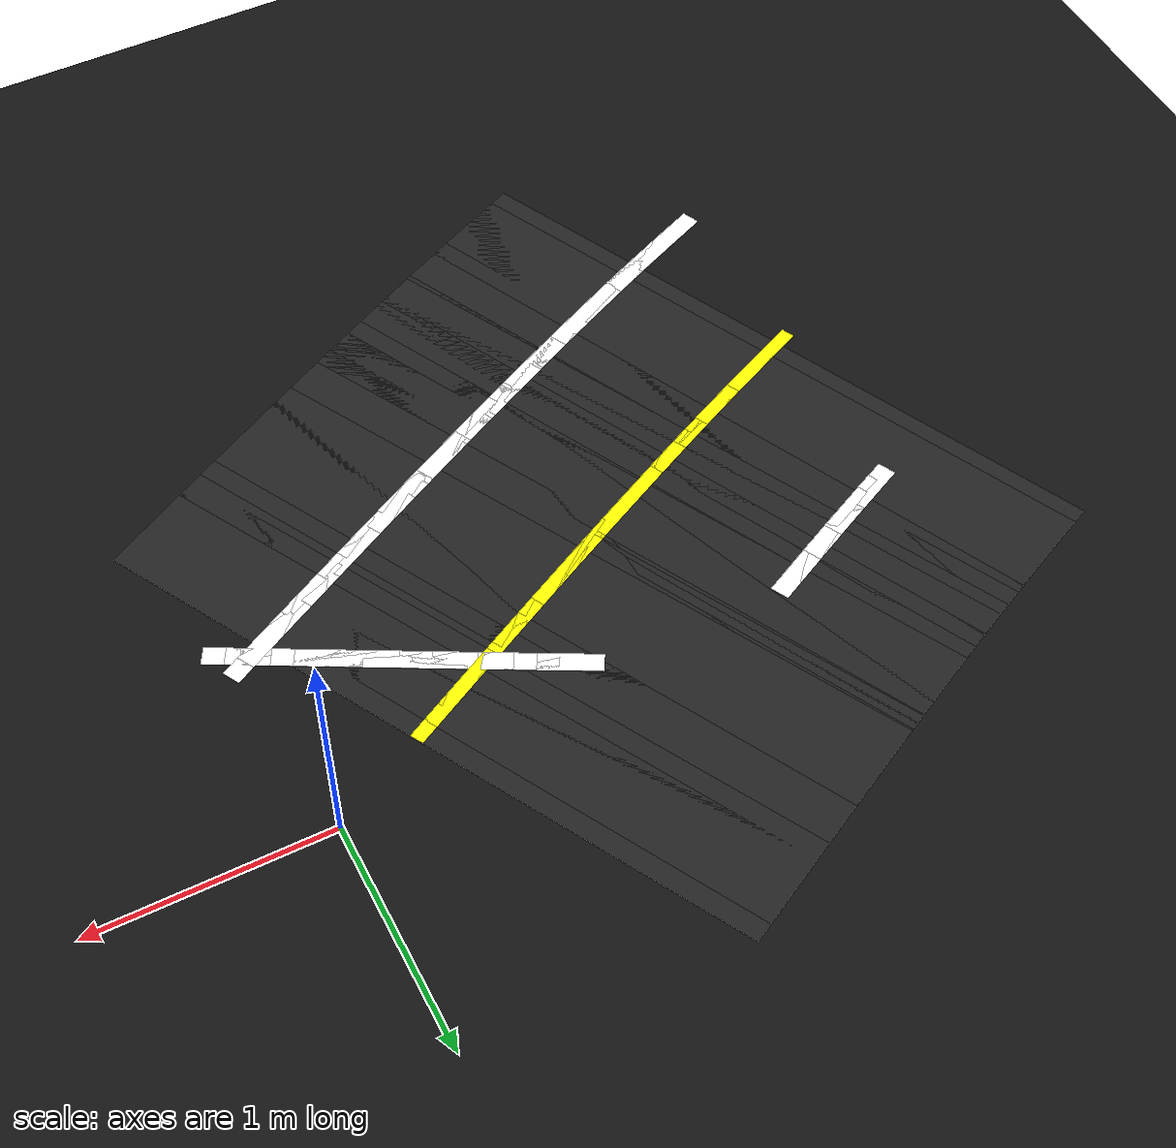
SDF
<sdf version="1.6">
 <world name="figure8_world">
  <model name="ground_plane">
   <static>true</static>
   <link name="link">
    <collision name="collision">
     <geometry><plane><normal>0 0 1</normal><size>120 120</size></plane></geometry>
    </collision>
    <visual name="visual">
     <geometry><plane><normal>0 0 1</normal><size>120 120</size></plane></geometry>
     <material><ambient>0.08 0.08 0.08 1</ambient><diffuse>0.08 0.08 0.08 1</diffuse></material>
    </visual>
   </link>
  </model>
  <model name="seg_01654">
   <static>true</static>
   <pose>-1.0128 -0.3041 0.0030 0 0 -0.4940</pose>
   <link name="link">
    <collision name="collision"><geometry><box><size>0.4000 0.0800 0.002</size></box></geometry></collision>
    <visual name="visual">
     <geometry><box><size>0.4000 0.0800 0.002</size></box></geometry>
     <material><ambient>1 1 1 1</ambient><diffuse>1 1 1 1</diffuse></material>
    </visual>
   </link>
  </model>
  <model name="seg_01658">
   <static>true</static>
   <pose>-0.9364 -0.3454 0.0030 0 0 -0.4948</pose>
   <link name="link">
    <collision name="collision"><geometry><box><size>0.4000 0.0800 0.002</size></box></geometry></collision>
    <visual name="visual">
     <geometry><box><size>0.4000 0.0800 0.002</size></box></geometry>
     <material><ambient>1 1 1 1</ambient><diffuse>1 1 1 1</diffuse></material>
    </visual>
   </link>
  </model>
  <model name="seg_01662">
   <static>true</static>
   <pose>-0.8598 -0.3868 0.0030 0 0 -0.4955</pose>
   <link name="link">
    <collision name="collision"><geometry><box><size>0.4000 0.0800 0.002</size></box></geometry></collision>
    <visual name="visual">
     <geometry><box><size>0.4000 0.0800 0.002</size></box></geometry>
     <material><ambient>1 1 1 1</ambient><diffuse>1 1 1 1</diffuse></material>
    </visual>
   </link>
  </model>
  <model name="seg_01666">
   <static>true</static>
   <pose>-0.7829 -0.4284 0.0030 0 0 -0.4961</pose>
   <link name="link">
    <collision name="collision"><geometry><box><size>0.4000 0.0800 0.002</size></box></geometry></collision>
    <visual name="visual">
     <geometry><box><size>0.4000 0.0800 0.002</size></box></geometry>
     <material><ambient>1 1 1 1</ambient><diffuse>1 1 1 1</diffuse></material>
    </visual>
   </link>
  </model>
  <model name="seg_01670">
   <static>true</static>
   <pose>-0.7060 -0.4701 0.0030 0 0 -0.4966</pose>
   <link name="link">
    <collision name="collision"><geometry><box><size>0.4000 0.0800 0.002</size></box></geometry></collision>
    <visual name="visual">
     <geometry><box><size>0.4000 0.0800 0.002</size></box></geometry>
     <material><ambient>1 1 1 1</ambient><diffuse>1 1 1 1</diffuse></material>
    </visual>
   </link>
  </model>
  <model name="seg_01674">
   <static>true</static>
   <pose>-0.6289 -0.5119 0.0030 0 0 -0.4971</pose>
   <link name="link">
    <collision name="collision"><geometry><box><size>0.4000 0.0800 0.002</size></box></geometry></collision>
    <visual name="visual">
     <geometry><box><size>0.4000 0.0800 0.002</size></box></geometry>
     <material><ambient>1 1 1 1</ambient><diffuse>1 1 1 1</diffuse></material>
    </visual>
   </link>
  </model>
  <model name="seg_01678">
   <static>true</static>
   <pose>-0.5516 -0.5538 0.0030 0 0 -0.4974</pose>
   <link name="link">
    <collision name="collision"><geometry><box><size>0.4000 0.0800 0.002</size></box></geometry></collision>
    <visual name="visual">
     <geometry><box><size>0.4000 0.0800 0.002</size></box></geometry>
     <material><ambient>1 1 1 1</ambient><diffuse>1 1 1 1</diffuse></material>
    </visual>
   </link>
  </model>
  <model name="seg_01682">
   <static>true</static>
   <pose>-0.4743 -0.5958 0.0030 0 0 -0.4976</pose>
   <link name="link">
    <collision name="collision"><geometry><box><size>0.4000 0.0800 0.002</size></box></geometry></collision>
    <visual name="visual">
     <geometry><box><size>0.4000 0.0800 0.002</size></box></geometry>
     <material><ambient>1 1 1 1</ambient><diffuse>1 1 1 1</diffuse></material>
    </visual>
   </link>
  </model>
  <model name="seg_01686">
   <static>true</static>
   <pose>-0.3969 -0.6379 0.0030 0 0 -0.4978</pose>
   <link name="link">
    <collision name="collision"><geometry><box><size>0.4000 0.0800 0.002</size></box></geometry></collision>
    <visual name="visual">
     <geometry><box><size>0.4000 0.0800 0.002</size></box></geometry>
     <material><ambient>1 1 1 1</ambient><diffuse>1 1 1 1</diffuse></material>
    </visual>
   </link>
  </model>
  <model name="seg_01690">
   <static>true</static>
   <pose>-0.3194 -0.6800 0.0030 0 0 -0.4978</pose>
   <link name="link">
    <collision name="collision"><geometry><box><size>0.4000 0.0800 0.002</size></box></geometry></collision>
    <visual name="visual">
     <geometry><box><size>0.4000 0.0800 0.002</size></box></geometry>
     <material><ambient>1 1 1 1</ambient><diffuse>1 1 1 1</diffuse></material>
    </visual>
   </link>
  </model>
  <model name="seg_01694">
   <static>true</static>
   <pose>-0.2418 -0.7222 0.0030 0 0 -0.4978</pose>
   <link name="link">
    <collision name="collision"><geometry><box><size>0.4000 0.0800 0.002</size></box></geometry></collision>
    <visual name="visual">
     <geometry><box><size>0.4000 0.0800 0.002</size></box></geometry>
     <material><ambient>1 1 1 1</ambient><diffuse>1 1 1 1</diffuse></material>
    </visual>
   </link>
  </model>
  <model name="seg_01698">
   <static>true</static>
   <pose>-0.1642 -0.7643 0.0030 0 0 -0.4976</pose>
   <link name="link">
    <collision name="collision"><geometry><box><size>0.4000 0.0800 0.002</size></box></geometry></collision>
    <visual name="visual">
     <geometry><box><size>0.4000 0.0800 0.002</size></box></geometry>
     <material><ambient>1 1 1 1</ambient><diffuse>1 1 1 1</diffuse></material>
    </visual>
   </link>
  </model>
  <model name="seg_01702">
   <static>true</static>
   <pose>-0.0866 -0.8065 0.0030 0 0 -0.4974</pose>
   <link name="link">
    <collision name="collision"><geometry><box><size>0.4000 0.0800 0.002</size></box></geometry></collision>
    <visual name="visual">
     <geometry><box><size>0.4000 0.0800 0.002</size></box></geometry>
     <material><ambient>1 1 1 1</ambient><diffuse>1 1 1 1</diffuse></material>
    </visual>
   </link>
  </model>
  <model name="seg_01706">
   <static>true</static>
   <pose>-0.0090 -0.8486 0.0030 0 0 -0.4971</pose>
   <link name="link">
    <collision name="collision"><geometry><box><size>0.4000 0.0800 0.002</size></box></geometry></collision>
    <visual name="visual">
     <geometry><box><size>0.4000 0.0800 0.002</size></box></geometry>
     <material><ambient>1 1 1 1</ambient><diffuse>1 1 1 1</diffuse></material>
    </visual>
   </link>
  </model>
  <model name="seg_01894">
   <static>true</static>
   <pose>-2.4564 -2.1023 0.0030 0 0 0.4134</pose>
   <link name="link">
    <collision name="collision"><geometry><box><size>0.4000 0.0800 0.002</size></box></geometry></collision>
    <visual name="visual">
     <geometry><box><size>0.4000 0.0800 0.002</size></box></geometry>
     <material><ambient>1 1 1 1</ambient><diffuse>1 1 1 1</diffuse></material>
    </visual>
   </link>
  </model>
  <model name="seg_01898">
   <static>true</static>
   <pose>-2.3869 -2.0714 0.0030 0 0 0.4187</pose>
   <link name="link">
    <collision name="collision"><geometry><box><size>0.4000 0.0800 0.002</size></box></geometry></collision>
    <visual name="visual">
     <geometry><box><size>0.4000 0.0800 0.002</size></box></geometry>
     <material><ambient>1 1 1 1</ambient><diffuse>1 1 1 1</diffuse></material>
    </visual>
   </link>
  </model>
  <model name="seg_01902">
   <static>true</static>
   <pose>-2.3169 -2.0398 0.0030 0 0 0.4238</pose>
   <link name="link">
    <collision name="collision"><geometry><box><size>0.4000 0.0800 0.002</size></box></geometry></collision>
    <visual name="visual">
     <geometry><box><size>0.4000 0.0800 0.002</size></box></geometry>
     <material><ambient>1 1 1 1</ambient><diffuse>1 1 1 1</diffuse></material>
    </visual>
   </link>
  </model>
  <model name="seg_01906">
   <static>true</static>
   <pose>-2.2465 -2.0076 0.0030 0 0 0.4287</pose>
   <link name="link">
    <collision name="collision"><geometry><box><size>0.4000 0.0800 0.002</size></box></geometry></collision>
    <visual name="visual">
     <geometry><box><size>0.4000 0.0800 0.002</size></box></geometry>
     <material><ambient>1 1 1 1</ambient><diffuse>1 1 1 1</diffuse></material>
    </visual>
   </link>
  </model>
  <model name="seg_01910">
   <static>true</static>
   <pose>-2.1757 -1.9749 0.0030 0 0 0.4333</pose>
   <link name="link">
    <collision name="collision"><geometry><box><size>0.4000 0.0800 0.002</size></box></geometry></collision>
    <visual name="visual">
     <geometry><box><size>0.4000 0.0800 0.002</size></box></geometry>
     <material><ambient>1 1 1 1</ambient><diffuse>1 1 1 1</diffuse></material>
    </visual>
   </link>
  </model>
  <model name="seg_01911">
   <static>true</static>
   <pose>-2.4905 -1.2942 0.0030 0 0 0.4333</pose>
   <link name="link">
    <collision name="collision"><geometry><box><size>0.4000 0.0600 0.002</size></box></geometry></collision>
    <visual name="visual">
     <geometry><box><size>0.4000 0.0600 0.002</size></box></geometry>
     <material><ambient>1 1 0 1</ambient><diffuse>1 1 0 1</diffuse></material>
    </visual>
   </link>
  </model>
  <model name="seg_01912">
   <static>true</static>
   <pose>-2.4223 -1.2623 0.0010 0 0 0.4376</pose>
   <link name="link">
    <collision name="collision"><geometry><box><size>0.4000 3.0000 0.002</size></box></geometry></collision>
    <visual name="visual">
     <geometry><box><size>0.4000 3.0000 0.002</size></box></geometry>
     <material><ambient>0.14 0.14 0.14 1</ambient><diffuse>0.14 0.14 0.14 1</diffuse></material>
    </visual>
   </link>
  </model>
  <model name="seg_01914">
   <static>true</static>
   <pose>-2.1044 -1.9416 0.0030 0 0 0.4376</pose>
   <link name="link">
    <collision name="collision"><geometry><box><size>0.4000 0.0800 0.002</size></box></geometry></collision>
    <visual name="visual">
     <geometry><box><size>0.4000 0.0800 0.002</size></box></geometry>
     <material><ambient>1 1 1 1</ambient><diffuse>1 1 1 1</diffuse></material>
    </visual>
   </link>
  </model>
  <model name="seg_01915">
   <static>true</static>
   <pose>-2.4223 -1.2623 0.0030 0 0 0.4376</pose>
   <link name="link">
    <collision name="collision"><geometry><box><size>0.4000 0.0600 0.002</size></box></geometry></collision>
    <visual name="visual">
     <geometry><box><size>0.4000 0.0600 0.002</size></box></geometry>
     <material><ambient>1 1 0 1</ambient><diffuse>1 1 0 1</diffuse></material>
    </visual>
   </link>
  </model>
  <model name="seg_01916">
   <static>true</static>
   <pose>-2.3535 -1.2297 0.0010 0 0 0.4418</pose>
   <link name="link">
    <collision name="collision"><geometry><box><size>0.4000 3.0000 0.002</size></box></geometry></collision>
    <visual name="visual">
     <geometry><box><size>0.4000 3.0000 0.002</size></box></geometry>
     <material><ambient>0.14 0.14 0.14 1</ambient><diffuse>0.14 0.14 0.14 1</diffuse></material>
    </visual>
   </link>
  </model>
  <model name="seg_01918">
   <static>true</static>
   <pose>-2.0328 -1.9077 0.0030 0 0 0.4418</pose>
   <link name="link">
    <collision name="collision"><geometry><box><size>0.4000 0.0800 0.002</size></box></geometry></collision>
    <visual name="visual">
     <geometry><box><size>0.4000 0.0800 0.002</size></box></geometry>
     <material><ambient>1 1 1 1</ambient><diffuse>1 1 1 1</diffuse></material>
    </visual>
   </link>
  </model>
  <model name="seg_01919">
   <static>true</static>
   <pose>-2.3535 -1.2297 0.0030 0 0 0.4418</pose>
   <link name="link">
    <collision name="collision"><geometry><box><size>0.4000 0.0600 0.002</size></box></geometry></collision>
    <visual name="visual">
     <geometry><box><size>0.4000 0.0600 0.002</size></box></geometry>
     <material><ambient>1 1 0 1</ambient><diffuse>1 1 0 1</diffuse></material>
    </visual>
   </link>
  </model>
  <model name="seg_01920">
   <static>true</static>
   <pose>-2.2841 -1.1966 0.0010 0 0 0.4458</pose>
   <link name="link">
    <collision name="collision"><geometry><box><size>0.4000 3.0000 0.002</size></box></geometry></collision>
    <visual name="visual">
     <geometry><box><size>0.4000 3.0000 0.002</size></box></geometry>
     <material><ambient>0.14 0.14 0.14 1</ambient><diffuse>0.14 0.14 0.14 1</diffuse></material>
    </visual>
   </link>
  </model>
  <model name="seg_01922">
   <static>true</static>
   <pose>-1.9608 -1.8733 0.0030 0 0 0.4458</pose>
   <link name="link">
    <collision name="collision"><geometry><box><size>0.4000 0.0800 0.002</size></box></geometry></collision>
    <visual name="visual">
     <geometry><box><size>0.4000 0.0800 0.002</size></box></geometry>
     <material><ambient>1 1 1 1</ambient><diffuse>1 1 1 1</diffuse></material>
    </visual>
   </link>
  </model>
  <model name="seg_01923">
   <static>true</static>
   <pose>-2.2841 -1.1966 0.0030 0 0 0.4458</pose>
   <link name="link">
    <collision name="collision"><geometry><box><size>0.4000 0.0600 0.002</size></box></geometry></collision>
    <visual name="visual">
     <geometry><box><size>0.4000 0.0600 0.002</size></box></geometry>
     <material><ambient>1 1 0 1</ambient><diffuse>1 1 0 1</diffuse></material>
    </visual>
   </link>
  </model>
  <model name="seg_01924">
   <static>true</static>
   <pose>-2.2142 -1.1629 0.0010 0 0 0.4495</pose>
   <link name="link">
    <collision name="collision"><geometry><box><size>0.4000 3.0000 0.002</size></box></geometry></collision>
    <visual name="visual">
     <geometry><box><size>0.4000 3.0000 0.002</size></box></geometry>
     <material><ambient>0.14 0.14 0.14 1</ambient><diffuse>0.14 0.14 0.14 1</diffuse></material>
    </visual>
   </link>
  </model>
  <model name="seg_01926">
   <static>true</static>
   <pose>-1.8883 -1.8384 0.0030 0 0 0.4495</pose>
   <link name="link">
    <collision name="collision"><geometry><box><size>0.4000 0.0800 0.002</size></box></geometry></collision>
    <visual name="visual">
     <geometry><box><size>0.4000 0.0800 0.002</size></box></geometry>
     <material><ambient>1 1 1 1</ambient><diffuse>1 1 1 1</diffuse></material>
    </visual>
   </link>
  </model>
  <model name="seg_01927">
   <static>true</static>
   <pose>-2.2142 -1.1629 0.0030 0 0 0.4495</pose>
   <link name="link">
    <collision name="collision"><geometry><box><size>0.4000 0.0600 0.002</size></box></geometry></collision>
    <visual name="visual">
     <geometry><box><size>0.4000 0.0600 0.002</size></box></geometry>
     <material><ambient>1 1 0 1</ambient><diffuse>1 1 0 1</diffuse></material>
    </visual>
   </link>
  </model>
  <model name="seg_01928">
   <static>true</static>
   <pose>-2.1439 -1.1286 0.0010 0 0 0.4531</pose>
   <link name="link">
    <collision name="collision"><geometry><box><size>0.4000 3.0000 0.002</size></box></geometry></collision>
    <visual name="visual">
     <geometry><box><size>0.4000 3.0000 0.002</size></box></geometry>
     <material><ambient>0.14 0.14 0.14 1</ambient><diffuse>0.14 0.14 0.14 1</diffuse></material>
    </visual>
   </link>
  </model>
  <model name="seg_01929">
   <static>true</static>
   <pose>-2.4722 -0.4543 0.0030 0 0 0.4531</pose>
   <link name="link">
    <collision name="collision"><geometry><box><size>0.4000 0.0800 0.002</size></box></geometry></collision>
    <visual name="visual">
     <geometry><box><size>0.4000 0.0800 0.002</size></box></geometry>
     <material><ambient>1 1 1 1</ambient><diffuse>1 1 1 1</diffuse></material>
    </visual>
   </link>
  </model>
  <model name="seg_01930">
   <static>true</static>
   <pose>-1.8156 -1.8029 0.0030 0 0 0.4531</pose>
   <link name="link">
    <collision name="collision"><geometry><box><size>0.4000 0.0800 0.002</size></box></geometry></collision>
    <visual name="visual">
     <geometry><box><size>0.4000 0.0800 0.002</size></box></geometry>
     <material><ambient>1 1 1 1</ambient><diffuse>1 1 1 1</diffuse></material>
    </visual>
   </link>
  </model>
  <model name="seg_01931">
   <static>true</static>
   <pose>-2.1439 -1.1286 0.0030 0 0 0.4531</pose>
   <link name="link">
    <collision name="collision"><geometry><box><size>0.4000 0.0600 0.002</size></box></geometry></collision>
    <visual name="visual">
     <geometry><box><size>0.4000 0.0600 0.002</size></box></geometry>
     <material><ambient>1 1 0 1</ambient><diffuse>1 1 0 1</diffuse></material>
    </visual>
   </link>
  </model>
  <model name="seg_01932">
   <static>true</static>
   <pose>-2.0730 -1.0938 0.0010 0 0 0.4565</pose>
   <link name="link">
    <collision name="collision"><geometry><box><size>0.4000 3.0000 0.002</size></box></geometry></collision>
    <visual name="visual">
     <geometry><box><size>0.4000 3.0000 0.002</size></box></geometry>
     <material><ambient>0.14 0.14 0.14 1</ambient><diffuse>0.14 0.14 0.14 1</diffuse></material>
    </visual>
   </link>
  </model>
  <model name="seg_01933">
   <static>true</static>
   <pose>-2.4036 -0.4206 0.0030 0 0 0.4565</pose>
   <link name="link">
    <collision name="collision"><geometry><box><size>0.4000 0.0800 0.002</size></box></geometry></collision>
    <visual name="visual">
     <geometry><box><size>0.4000 0.0800 0.002</size></box></geometry>
     <material><ambient>1 1 1 1</ambient><diffuse>1 1 1 1</diffuse></material>
    </visual>
   </link>
  </model>
  <model name="seg_01934">
   <static>true</static>
   <pose>-1.7424 -1.7670 0.0030 0 0 0.4565</pose>
   <link name="link">
    <collision name="collision"><geometry><box><size>0.4000 0.0800 0.002</size></box></geometry></collision>
    <visual name="visual">
     <geometry><box><size>0.4000 0.0800 0.002</size></box></geometry>
     <material><ambient>1 1 1 1</ambient><diffuse>1 1 1 1</diffuse></material>
    </visual>
   </link>
  </model>
  <model name="seg_01935">
   <static>true</static>
   <pose>-2.0730 -1.0938 0.0030 0 0 0.4565</pose>
   <link name="link">
    <collision name="collision"><geometry><box><size>0.4000 0.0600 0.002</size></box></geometry></collision>
    <visual name="visual">
     <geometry><box><size>0.4000 0.0600 0.002</size></box></geometry>
     <material><ambient>1 1 0 1</ambient><diffuse>1 1 0 1</diffuse></material>
    </visual>
   </link>
  </model>
  <model name="seg_01936">
   <static>true</static>
   <pose>-2.0017 -1.0585 0.0010 0 0 0.4597</pose>
   <link name="link">
    <collision name="collision"><geometry><box><size>0.4000 3.0000 0.002</size></box></geometry></collision>
    <visual name="visual">
     <geometry><box><size>0.4000 3.0000 0.002</size></box></geometry>
     <material><ambient>0.14 0.14 0.14 1</ambient><diffuse>0.14 0.14 0.14 1</diffuse></material>
    </visual>
   </link>
  </model>
  <model name="seg_01937">
   <static>true</static>
   <pose>-2.3344 -0.3864 0.0030 0 0 0.4597</pose>
   <link name="link">
    <collision name="collision"><geometry><box><size>0.4000 0.0800 0.002</size></box></geometry></collision>
    <visual name="visual">
     <geometry><box><size>0.4000 0.0800 0.002</size></box></geometry>
     <material><ambient>1 1 1 1</ambient><diffuse>1 1 1 1</diffuse></material>
    </visual>
   </link>
  </model>
  <model name="seg_01938">
   <static>true</static>
   <pose>-1.6689 -1.7306 0.0030 0 0 0.4597</pose>
   <link name="link">
    <collision name="collision"><geometry><box><size>0.4000 0.0800 0.002</size></box></geometry></collision>
    <visual name="visual">
     <geometry><box><size>0.4000 0.0800 0.002</size></box></geometry>
     <material><ambient>1 1 1 1</ambient><diffuse>1 1 1 1</diffuse></material>
    </visual>
   </link>
  </model>
  <model name="seg_01939">
   <static>true</static>
   <pose>-2.0017 -1.0585 0.0030 0 0 0.4597</pose>
   <link name="link">
    <collision name="collision"><geometry><box><size>0.4000 0.0600 0.002</size></box></geometry></collision>
    <visual name="visual">
     <geometry><box><size>0.4000 0.0600 0.002</size></box></geometry>
     <material><ambient>1 1 0 1</ambient><diffuse>1 1 0 1</diffuse></material>
    </visual>
   </link>
  </model>
  <model name="seg_01940">
   <static>true</static>
   <pose>-1.9299 -1.0227 0.0010 0 0 0.4627</pose>
   <link name="link">
    <collision name="collision"><geometry><box><size>0.4000 3.0000 0.002</size></box></geometry></collision>
    <visual name="visual">
     <geometry><box><size>0.4000 3.0000 0.002</size></box></geometry>
     <material><ambient>0.14 0.14 0.14 1</ambient><diffuse>0.14 0.14 0.14 1</diffuse></material>
    </visual>
   </link>
  </model>
  <model name="seg_01941">
   <static>true</static>
   <pose>-2.2647 -0.3516 0.0030 0 0 0.4627</pose>
   <link name="link">
    <collision name="collision"><geometry><box><size>0.4000 0.0800 0.002</size></box></geometry></collision>
    <visual name="visual">
     <geometry><box><size>0.4000 0.0800 0.002</size></box></geometry>
     <material><ambient>1 1 1 1</ambient><diffuse>1 1 1 1</diffuse></material>
    </visual>
   </link>
  </model>
  <model name="seg_01942">
   <static>true</static>
   <pose>-1.5951 -1.6938 0.0030 0 0 0.4627</pose>
   <link name="link">
    <collision name="collision"><geometry><box><size>0.4000 0.0800 0.002</size></box></geometry></collision>
    <visual name="visual">
     <geometry><box><size>0.4000 0.0800 0.002</size></box></geometry>
     <material><ambient>1 1 1 1</ambient><diffuse>1 1 1 1</diffuse></material>
    </visual>
   </link>
  </model>
  <model name="seg_01943">
   <static>true</static>
   <pose>-1.9299 -1.0227 0.0030 0 0 0.4627</pose>
   <link name="link">
    <collision name="collision"><geometry><box><size>0.4000 0.0600 0.002</size></box></geometry></collision>
    <visual name="visual">
     <geometry><box><size>0.4000 0.0600 0.002</size></box></geometry>
     <material><ambient>1 1 0 1</ambient><diffuse>1 1 0 1</diffuse></material>
    </visual>
   </link>
  </model>
  <model name="seg_01944">
   <static>true</static>
   <pose>-1.8577 -0.9864 0.0010 0 0 0.4656</pose>
   <link name="link">
    <collision name="collision"><geometry><box><size>0.4000 3.0000 0.002</size></box></geometry></collision>
    <visual name="visual">
     <geometry><box><size>0.4000 3.0000 0.002</size></box></geometry>
     <material><ambient>0.14 0.14 0.14 1</ambient><diffuse>0.14 0.14 0.14 1</diffuse></material>
    </visual>
   </link>
  </model>
  <model name="seg_01945">
   <static>true</static>
   <pose>-2.1945 -0.3163 0.0030 0 0 0.4656</pose>
   <link name="link">
    <collision name="collision"><geometry><box><size>0.4000 0.0800 0.002</size></box></geometry></collision>
    <visual name="visual">
     <geometry><box><size>0.4000 0.0800 0.002</size></box></geometry>
     <material><ambient>1 1 1 1</ambient><diffuse>1 1 1 1</diffuse></material>
    </visual>
   </link>
  </model>
  <model name="seg_01946">
   <static>true</static>
   <pose>-1.5210 -1.6566 0.0030 0 0 0.4656</pose>
   <link name="link">
    <collision name="collision"><geometry><box><size>0.4000 0.0800 0.002</size></box></geometry></collision>
    <visual name="visual">
     <geometry><box><size>0.4000 0.0800 0.002</size></box></geometry>
     <material><ambient>1 1 1 1</ambient><diffuse>1 1 1 1</diffuse></material>
    </visual>
   </link>
  </model>
  <model name="seg_01947">
   <static>true</static>
   <pose>-1.8577 -0.9864 0.0030 0 0 0.4656</pose>
   <link name="link">
    <collision name="collision"><geometry><box><size>0.4000 0.0600 0.002</size></box></geometry></collision>
    <visual name="visual">
     <geometry><box><size>0.4000 0.0600 0.002</size></box></geometry>
     <material><ambient>1 1 0 1</ambient><diffuse>1 1 0 1</diffuse></material>
    </visual>
   </link>
  </model>
  <model name="seg_01948">
   <static>true</static>
   <pose>-1.7851 -0.9497 0.0010 0 0 0.4684</pose>
   <link name="link">
    <collision name="collision"><geometry><box><size>0.4000 3.0000 0.002</size></box></geometry></collision>
    <visual name="visual">
     <geometry><box><size>0.4000 3.0000 0.002</size></box></geometry>
     <material><ambient>0.14 0.14 0.14 1</ambient><diffuse>0.14 0.14 0.14 1</diffuse></material>
    </visual>
   </link>
  </model>
  <model name="seg_01949">
   <static>true</static>
   <pose>-2.1237 -0.2804 0.0030 0 0 0.4684</pose>
   <link name="link">
    <collision name="collision"><geometry><box><size>0.4000 0.0800 0.002</size></box></geometry></collision>
    <visual name="visual">
     <geometry><box><size>0.4000 0.0800 0.002</size></box></geometry>
     <material><ambient>1 1 1 1</ambient><diffuse>1 1 1 1</diffuse></material>
    </visual>
   </link>
  </model>
  <model name="seg_01950">
   <static>true</static>
   <pose>-1.4465 -1.6189 0.0030 0 0 0.4684</pose>
   <link name="link">
    <collision name="collision"><geometry><box><size>0.4000 0.0800 0.002</size></box></geometry></collision>
    <visual name="visual">
     <geometry><box><size>0.4000 0.0800 0.002</size></box></geometry>
     <material><ambient>1 1 1 1</ambient><diffuse>1 1 1 1</diffuse></material>
    </visual>
   </link>
  </model>
  <model name="seg_01951">
   <static>true</static>
   <pose>-1.7851 -0.9497 0.0030 0 0 0.4684</pose>
   <link name="link">
    <collision name="collision"><geometry><box><size>0.4000 0.0600 0.002</size></box></geometry></collision>
    <visual name="visual">
     <geometry><box><size>0.4000 0.0600 0.002</size></box></geometry>
     <material><ambient>1 1 0 1</ambient><diffuse>1 1 0 1</diffuse></material>
    </visual>
   </link>
  </model>
  <model name="seg_01952">
   <static>true</static>
   <pose>-1.7121 -0.9125 0.0010 0 0 0.4709</pose>
   <link name="link">
    <collision name="collision"><geometry><box><size>0.4000 3.0000 0.002</size></box></geometry></collision>
    <visual name="visual">
     <geometry><box><size>0.4000 3.0000 0.002</size></box></geometry>
     <material><ambient>0.14 0.14 0.14 1</ambient><diffuse>0.14 0.14 0.14 1</diffuse></material>
    </visual>
   </link>
  </model>
  <model name="seg_01954">
   <static>true</static>
   <pose>-1.3718 -1.5808 0.0030 0 0 0.4709</pose>
   <link name="link">
    <collision name="collision"><geometry><box><size>0.4000 0.0800 0.002</size></box></geometry></collision>
    <visual name="visual">
     <geometry><box><size>0.4000 0.0800 0.002</size></box></geometry>
     <material><ambient>1 1 1 1</ambient><diffuse>1 1 1 1</diffuse></material>
    </visual>
   </link>
  </model>
  <model name="seg_01955">
   <static>true</static>
   <pose>-1.7121 -0.9125 0.0030 0 0 0.4709</pose>
   <link name="link">
    <collision name="collision"><geometry><box><size>0.4000 0.0600 0.002</size></box></geometry></collision>
    <visual name="visual">
     <geometry><box><size>0.4000 0.0600 0.002</size></box></geometry>
     <material><ambient>1 1 0 1</ambient><diffuse>1 1 0 1</diffuse></material>
    </visual>
   </link>
  </model>
  <model name="seg_01956">
   <static>true</static>
   <pose>-1.6387 -0.8749 0.0010 0 0 0.4734</pose>
   <link name="link">
    <collision name="collision"><geometry><box><size>0.4000 3.0000 0.002</size></box></geometry></collision>
    <visual name="visual">
     <geometry><box><size>0.4000 3.0000 0.002</size></box></geometry>
     <material><ambient>0.14 0.14 0.14 1</ambient><diffuse>0.14 0.14 0.14 1</diffuse></material>
    </visual>
   </link>
  </model>
  <model name="seg_01958">
   <static>true</static>
   <pose>-1.2967 -1.5424 0.0030 0 0 0.4734</pose>
   <link name="link">
    <collision name="collision"><geometry><box><size>0.4000 0.0800 0.002</size></box></geometry></collision>
    <visual name="visual">
     <geometry><box><size>0.4000 0.0800 0.002</size></box></geometry>
     <material><ambient>1 1 1 1</ambient><diffuse>1 1 1 1</diffuse></material>
    </visual>
   </link>
  </model>
  <model name="seg_01959">
   <static>true</static>
   <pose>-1.6387 -0.8749 0.0030 0 0 0.4734</pose>
   <link name="link">
    <collision name="collision"><geometry><box><size>0.4000 0.0600 0.002</size></box></geometry></collision>
    <visual name="visual">
     <geometry><box><size>0.4000 0.0600 0.002</size></box></geometry>
     <material><ambient>1 1 0 1</ambient><diffuse>1 1 0 1</diffuse></material>
    </visual>
   </link>
  </model>
  <model name="seg_01960">
   <static>true</static>
   <pose>-1.5649 -0.8369 0.0010 0 0 0.4757</pose>
   <link name="link">
    <collision name="collision"><geometry><box><size>0.4000 3.0000 0.002</size></box></geometry></collision>
    <visual name="visual">
     <geometry><box><size>0.4000 3.0000 0.002</size></box></geometry>
     <material><ambient>0.14 0.14 0.14 1</ambient><diffuse>0.14 0.14 0.14 1</diffuse></material>
    </visual>
   </link>
  </model>
  <model name="seg_01962">
   <static>true</static>
   <pose>-1.2214 -1.5036 0.0030 0 0 0.4757</pose>
   <link name="link">
    <collision name="collision"><geometry><box><size>0.4000 0.0800 0.002</size></box></geometry></collision>
    <visual name="visual">
     <geometry><box><size>0.4000 0.0800 0.002</size></box></geometry>
     <material><ambient>1 1 1 1</ambient><diffuse>1 1 1 1</diffuse></material>
    </visual>
   </link>
  </model>
  <model name="seg_01963">
   <static>true</static>
   <pose>-1.5649 -0.8369 0.0030 0 0 0.4757</pose>
   <link name="link">
    <collision name="collision"><geometry><box><size>0.4000 0.0600 0.002</size></box></geometry></collision>
    <visual name="visual">
     <geometry><box><size>0.4000 0.0600 0.002</size></box></geometry>
     <material><ambient>1 1 0 1</ambient><diffuse>1 1 0 1</diffuse></material>
    </visual>
   </link>
  </model>
  <model name="seg_01964">
   <static>true</static>
   <pose>-1.4908 -0.7985 0.0010 0 0 0.4779</pose>
   <link name="link">
    <collision name="collision"><geometry><box><size>0.4000 3.0000 0.002</size></box></geometry></collision>
    <visual name="visual">
     <geometry><box><size>0.4000 3.0000 0.002</size></box></geometry>
     <material><ambient>0.14 0.14 0.14 1</ambient><diffuse>0.14 0.14 0.14 1</diffuse></material>
    </visual>
   </link>
  </model>
  <model name="seg_01966">
   <static>true</static>
   <pose>-1.1458 -1.4645 0.0030 0 0 0.4779</pose>
   <link name="link">
    <collision name="collision"><geometry><box><size>0.4000 0.0800 0.002</size></box></geometry></collision>
    <visual name="visual">
     <geometry><box><size>0.4000 0.0800 0.002</size></box></geometry>
     <material><ambient>1 1 1 1</ambient><diffuse>1 1 1 1</diffuse></material>
    </visual>
   </link>
  </model>
  <model name="seg_01967">
   <static>true</static>
   <pose>-1.4908 -0.7985 0.0030 0 0 0.4779</pose>
   <link name="link">
    <collision name="collision"><geometry><box><size>0.4000 0.0600 0.002</size></box></geometry></collision>
    <visual name="visual">
     <geometry><box><size>0.4000 0.0600 0.002</size></box></geometry>
     <material><ambient>1 1 0 1</ambient><diffuse>1 1 0 1</diffuse></material>
    </visual>
   </link>
  </model>
  <model name="seg_01968">
   <static>true</static>
   <pose>-1.4163 -0.7597 0.0010 0 0 0.4799</pose>
   <link name="link">
    <collision name="collision"><geometry><box><size>0.4000 3.0000 0.002</size></box></geometry></collision>
    <visual name="visual">
     <geometry><box><size>0.4000 3.0000 0.002</size></box></geometry>
     <material><ambient>0.14 0.14 0.14 1</ambient><diffuse>0.14 0.14 0.14 1</diffuse></material>
    </visual>
   </link>
  </model>
  <model name="seg_01970">
   <static>true</static>
   <pose>-1.0700 -1.4250 0.0030 0 0 0.4799</pose>
   <link name="link">
    <collision name="collision"><geometry><box><size>0.4000 0.0800 0.002</size></box></geometry></collision>
    <visual name="visual">
     <geometry><box><size>0.4000 0.0800 0.002</size></box></geometry>
     <material><ambient>1 1 1 1</ambient><diffuse>1 1 1 1</diffuse></material>
    </visual>
   </link>
  </model>
  <model name="seg_01971">
   <static>true</static>
   <pose>-1.4163 -0.7597 0.0030 0 0 0.4799</pose>
   <link name="link">
    <collision name="collision"><geometry><box><size>0.4000 0.0600 0.002</size></box></geometry></collision>
    <visual name="visual">
     <geometry><box><size>0.4000 0.0600 0.002</size></box></geometry>
     <material><ambient>1 1 0 1</ambient><diffuse>1 1 0 1</diffuse></material>
    </visual>
   </link>
  </model>
  <model name="seg_01972">
   <static>true</static>
   <pose>-1.3415 -0.7206 0.0010 0 0 0.4818</pose>
   <link name="link">
    <collision name="collision"><geometry><box><size>0.4000 3.0000 0.002</size></box></geometry></collision>
    <visual name="visual">
     <geometry><box><size>0.4000 3.0000 0.002</size></box></geometry>
     <material><ambient>0.14 0.14 0.14 1</ambient><diffuse>0.14 0.14 0.14 1</diffuse></material>
    </visual>
   </link>
  </model>
  <model name="seg_01974">
   <static>true</static>
   <pose>-0.9940 -1.3852 0.0030 0 0 0.4818</pose>
   <link name="link">
    <collision name="collision"><geometry><box><size>0.4000 0.0800 0.002</size></box></geometry></collision>
    <visual name="visual">
     <geometry><box><size>0.4000 0.0800 0.002</size></box></geometry>
     <material><ambient>1 1 1 1</ambient><diffuse>1 1 1 1</diffuse></material>
    </visual>
   </link>
  </model>
  <model name="seg_01975">
   <static>true</static>
   <pose>-1.3415 -0.7206 0.0030 0 0 0.4818</pose>
   <link name="link">
    <collision name="collision"><geometry><box><size>0.4000 0.0600 0.002</size></box></geometry></collision>
    <visual name="visual">
     <geometry><box><size>0.4000 0.0600 0.002</size></box></geometry>
     <material><ambient>1 1 0 1</ambient><diffuse>1 1 0 1</diffuse></material>
    </visual>
   </link>
  </model>
  <model name="seg_01976">
   <static>true</static>
   <pose>-1.2665 -0.6812 0.0010 0 0 0.4836</pose>
   <link name="link">
    <collision name="collision"><geometry><box><size>0.4000 3.0000 0.002</size></box></geometry></collision>
    <visual name="visual">
     <geometry><box><size>0.4000 3.0000 0.002</size></box></geometry>
     <material><ambient>0.14 0.14 0.14 1</ambient><diffuse>0.14 0.14 0.14 1</diffuse></material>
    </visual>
   </link>
  </model>
  <model name="seg_01978">
   <static>true</static>
   <pose>-0.9177 -1.3452 0.0030 0 0 0.4836</pose>
   <link name="link">
    <collision name="collision"><geometry><box><size>0.4000 0.0800 0.002</size></box></geometry></collision>
    <visual name="visual">
     <geometry><box><size>0.4000 0.0800 0.002</size></box></geometry>
     <material><ambient>1 1 1 1</ambient><diffuse>1 1 1 1</diffuse></material>
    </visual>
   </link>
  </model>
  <model name="seg_01979">
   <static>true</static>
   <pose>-1.2665 -0.6812 0.0030 0 0 0.4836</pose>
   <link name="link">
    <collision name="collision"><geometry><box><size>0.4000 0.0600 0.002</size></box></geometry></collision>
    <visual name="visual">
     <geometry><box><size>0.4000 0.0600 0.002</size></box></geometry>
     <material><ambient>1 1 0 1</ambient><diffuse>1 1 0 1</diffuse></material>
    </visual>
   </link>
  </model>
  <model name="seg_01980">
   <static>true</static>
   <pose>-1.1911 -0.6415 0.0010 0 0 0.4853</pose>
   <link name="link">
    <collision name="collision"><geometry><box><size>0.4000 3.0000 0.002</size></box></geometry></collision>
    <visual name="visual">
     <geometry><box><size>0.4000 3.0000 0.002</size></box></geometry>
     <material><ambient>0.14 0.14 0.14 1</ambient><diffuse>0.14 0.14 0.14 1</diffuse></material>
    </visual>
   </link>
  </model>
  <model name="seg_01982">
   <static>true</static>
   <pose>-0.8413 -1.3049 0.0030 0 0 0.4853</pose>
   <link name="link">
    <collision name="collision"><geometry><box><size>0.4000 0.0800 0.002</size></box></geometry></collision>
    <visual name="visual">
     <geometry><box><size>0.4000 0.0800 0.002</size></box></geometry>
     <material><ambient>1 1 1 1</ambient><diffuse>1 1 1 1</diffuse></material>
    </visual>
   </link>
  </model>
  <model name="seg_01983">
   <static>true</static>
   <pose>-1.1911 -0.6415 0.0030 0 0 0.4853</pose>
   <link name="link">
    <collision name="collision"><geometry><box><size>0.4000 0.0600 0.002</size></box></geometry></collision>
    <visual name="visual">
     <geometry><box><size>0.4000 0.0600 0.002</size></box></geometry>
     <material><ambient>1 1 0 1</ambient><diffuse>1 1 0 1</diffuse></material>
    </visual>
   </link>
  </model>
  <model name="seg_01984">
   <static>true</static>
   <pose>-1.1155 -0.6014 0.0010 0 0 0.4869</pose>
   <link name="link">
    <collision name="collision"><geometry><box><size>0.4000 3.0000 0.002</size></box></geometry></collision>
    <visual name="visual">
     <geometry><box><size>0.4000 3.0000 0.002</size></box></geometry>
     <material><ambient>0.14 0.14 0.14 1</ambient><diffuse>0.14 0.14 0.14 1</diffuse></material>
    </visual>
   </link>
  </model>
  <model name="seg_01986">
   <static>true</static>
   <pose>-0.7646 -1.2643 0.0030 0 0 0.4869</pose>
   <link name="link">
    <collision name="collision"><geometry><box><size>0.4000 0.0800 0.002</size></box></geometry></collision>
    <visual name="visual">
     <geometry><box><size>0.4000 0.0800 0.002</size></box></geometry>
     <material><ambient>1 1 1 1</ambient><diffuse>1 1 1 1</diffuse></material>
    </visual>
   </link>
  </model>
  <model name="seg_01987">
   <static>true</static>
   <pose>-1.1155 -0.6014 0.0030 0 0 0.4869</pose>
   <link name="link">
    <collision name="collision"><geometry><box><size>0.4000 0.0600 0.002</size></box></geometry></collision>
    <visual name="visual">
     <geometry><box><size>0.4000 0.0600 0.002</size></box></geometry>
     <material><ambient>1 1 0 1</ambient><diffuse>1 1 0 1</diffuse></material>
    </visual>
   </link>
  </model>
  <model name="seg_01988">
   <static>true</static>
   <pose>-1.0396 -0.5611 0.0010 0 0 0.4883</pose>
   <link name="link">
    <collision name="collision"><geometry><box><size>0.4000 3.0000 0.002</size></box></geometry></collision>
    <visual name="visual">
     <geometry><box><size>0.4000 3.0000 0.002</size></box></geometry>
     <material><ambient>0.14 0.14 0.14 1</ambient><diffuse>0.14 0.14 0.14 1</diffuse></material>
    </visual>
   </link>
  </model>
  <model name="seg_01990">
   <static>true</static>
   <pose>-0.6878 -1.2235 0.0030 0 0 0.4883</pose>
   <link name="link">
    <collision name="collision"><geometry><box><size>0.4000 0.0800 0.002</size></box></geometry></collision>
    <visual name="visual">
     <geometry><box><size>0.4000 0.0800 0.002</size></box></geometry>
     <material><ambient>1 1 1 1</ambient><diffuse>1 1 1 1</diffuse></material>
    </visual>
   </link>
  </model>
  <model name="seg_01991">
   <static>true</static>
   <pose>-1.0396 -0.5611 0.0030 0 0 0.4883</pose>
   <link name="link">
    <collision name="collision"><geometry><box><size>0.4000 0.0600 0.002</size></box></geometry></collision>
    <visual name="visual">
     <geometry><box><size>0.4000 0.0600 0.002</size></box></geometry>
     <material><ambient>1 1 0 1</ambient><diffuse>1 1 0 1</diffuse></material>
    </visual>
   </link>
  </model>
  <model name="seg_01992">
   <static>true</static>
   <pose>-0.9636 -0.5206 0.0010 0 0 0.4897</pose>
   <link name="link">
    <collision name="collision"><geometry><box><size>0.4000 3.0000 0.002</size></box></geometry></collision>
    <visual name="visual">
     <geometry><box><size>0.4000 3.0000 0.002</size></box></geometry>
     <material><ambient>0.14 0.14 0.14 1</ambient><diffuse>0.14 0.14 0.14 1</diffuse></material>
    </visual>
   </link>
  </model>
  <model name="seg_01994">
   <static>true</static>
   <pose>-0.6108 -1.1825 0.0030 0 0 0.4897</pose>
   <link name="link">
    <collision name="collision"><geometry><box><size>0.4000 0.0800 0.002</size></box></geometry></collision>
    <visual name="visual">
     <geometry><box><size>0.4000 0.0800 0.002</size></box></geometry>
     <material><ambient>1 1 1 1</ambient><diffuse>1 1 1 1</diffuse></material>
    </visual>
   </link>
  </model>
  <model name="seg_01995">
   <static>true</static>
   <pose>-0.9636 -0.5206 0.0030 0 0 0.4897</pose>
   <link name="link">
    <collision name="collision"><geometry><box><size>0.4000 0.0600 0.002</size></box></geometry></collision>
    <visual name="visual">
     <geometry><box><size>0.4000 0.0600 0.002</size></box></geometry>
     <material><ambient>1 1 0 1</ambient><diffuse>1 1 0 1</diffuse></material>
    </visual>
   </link>
  </model>
  <model name="seg_01996">
   <static>true</static>
   <pose>-0.8873 -0.4798 0.0010 0 0 0.4909</pose>
   <link name="link">
    <collision name="collision"><geometry><box><size>0.4000 3.0000 0.002</size></box></geometry></collision>
    <visual name="visual">
     <geometry><box><size>0.4000 3.0000 0.002</size></box></geometry>
     <material><ambient>0.14 0.14 0.14 1</ambient><diffuse>0.14 0.14 0.14 1</diffuse></material>
    </visual>
   </link>
  </model>
  <model name="seg_01998">
   <static>true</static>
   <pose>-0.5337 -1.1412 0.0030 0 0 0.4909</pose>
   <link name="link">
    <collision name="collision"><geometry><box><size>0.4000 0.0800 0.002</size></box></geometry></collision>
    <visual name="visual">
     <geometry><box><size>0.4000 0.0800 0.002</size></box></geometry>
     <material><ambient>1 1 1 1</ambient><diffuse>1 1 1 1</diffuse></material>
    </visual>
   </link>
  </model>
  <model name="seg_01999">
   <static>true</static>
   <pose>-0.8873 -0.4798 0.0030 0 0 0.4909</pose>
   <link name="link">
    <collision name="collision"><geometry><box><size>0.4000 0.0600 0.002</size></box></geometry></collision>
    <visual name="visual">
     <geometry><box><size>0.4000 0.0600 0.002</size></box></geometry>
     <material><ambient>1 1 0 1</ambient><diffuse>1 1 0 1</diffuse></material>
    </visual>
   </link>
  </model>
  <model name="seg_02000">
   <static>true</static>
   <pose>-0.8108 -0.4388 0.0010 0 0 0.4920</pose>
   <link name="link">
    <collision name="collision"><geometry><box><size>0.4000 3.0000 0.002</size></box></geometry></collision>
    <visual name="visual">
     <geometry><box><size>0.4000 3.0000 0.002</size></box></geometry>
     <material><ambient>0.14 0.14 0.14 1</ambient><diffuse>0.14 0.14 0.14 1</diffuse></material>
    </visual>
   </link>
  </model>
  <model name="seg_02002">
   <static>true</static>
   <pose>-0.4565 -1.0998 0.0030 0 0 0.4920</pose>
   <link name="link">
    <collision name="collision"><geometry><box><size>0.4000 0.0800 0.002</size></box></geometry></collision>
    <visual name="visual">
     <geometry><box><size>0.4000 0.0800 0.002</size></box></geometry>
     <material><ambient>1 1 1 1</ambient><diffuse>1 1 1 1</diffuse></material>
    </visual>
   </link>
  </model>
  <model name="seg_02003">
   <static>true</static>
   <pose>-0.8108 -0.4388 0.0030 0 0 0.4920</pose>
   <link name="link">
    <collision name="collision"><geometry><box><size>0.4000 0.0600 0.002</size></box></geometry></collision>
    <visual name="visual">
     <geometry><box><size>0.4000 0.0600 0.002</size></box></geometry>
     <material><ambient>1 1 0 1</ambient><diffuse>1 1 0 1</diffuse></material>
    </visual>
   </link>
  </model>
  <model name="seg_02004">
   <static>true</static>
   <pose>-0.7341 -0.3976 0.0010 0 0 0.4930</pose>
   <link name="link">
    <collision name="collision"><geometry><box><size>0.4000 3.0000 0.002</size></box></geometry></collision>
    <visual name="visual">
     <geometry><box><size>0.4000 3.0000 0.002</size></box></geometry>
     <material><ambient>0.14 0.14 0.14 1</ambient><diffuse>0.14 0.14 0.14 1</diffuse></material>
    </visual>
   </link>
  </model>
  <model name="seg_02006">
   <static>true</static>
   <pose>-0.3791 -1.0583 0.0030 0 0 0.4930</pose>
   <link name="link">
    <collision name="collision"><geometry><box><size>0.4000 0.0800 0.002</size></box></geometry></collision>
    <visual name="visual">
     <geometry><box><size>0.4000 0.0800 0.002</size></box></geometry>
     <material><ambient>1 1 1 1</ambient><diffuse>1 1 1 1</diffuse></material>
    </visual>
   </link>
  </model>
  <model name="seg_02007">
   <static>true</static>
   <pose>-0.7341 -0.3976 0.0030 0 0 0.4930</pose>
   <link name="link">
    <collision name="collision"><geometry><box><size>0.4000 0.0600 0.002</size></box></geometry></collision>
    <visual name="visual">
     <geometry><box><size>0.4000 0.0600 0.002</size></box></geometry>
     <material><ambient>1 1 0 1</ambient><diffuse>1 1 0 1</diffuse></material>
    </visual>
   </link>
  </model>
  <model name="seg_02008">
   <static>true</static>
   <pose>-0.6572 -0.3562 0.0010 0 0 0.4940</pose>
   <link name="link">
    <collision name="collision"><geometry><box><size>0.4000 3.0000 0.002</size></box></geometry></collision>
    <visual name="visual">
     <geometry><box><size>0.4000 3.0000 0.002</size></box></geometry>
     <material><ambient>0.14 0.14 0.14 1</ambient><diffuse>0.14 0.14 0.14 1</diffuse></material>
    </visual>
   </link>
  </model>
  <model name="seg_02010">
   <static>true</static>
   <pose>-0.3017 -1.0166 0.0030 0 0 0.4940</pose>
   <link name="link">
    <collision name="collision"><geometry><box><size>0.4000 0.0800 0.002</size></box></geometry></collision>
    <visual name="visual">
     <geometry><box><size>0.4000 0.0800 0.002</size></box></geometry>
     <material><ambient>1 1 1 1</ambient><diffuse>1 1 1 1</diffuse></material>
    </visual>
   </link>
  </model>
  <model name="seg_02011">
   <static>true</static>
   <pose>-0.6572 -0.3562 0.0030 0 0 0.4940</pose>
   <link name="link">
    <collision name="collision"><geometry><box><size>0.4000 0.0600 0.002</size></box></geometry></collision>
    <visual name="visual">
     <geometry><box><size>0.4000 0.0600 0.002</size></box></geometry>
     <material><ambient>1 1 0 1</ambient><diffuse>1 1 0 1</diffuse></material>
    </visual>
   </link>
  </model>
  <model name="seg_02012">
   <static>true</static>
   <pose>-0.5803 -0.3147 0.0010 0 0 0.4948</pose>
   <link name="link">
    <collision name="collision"><geometry><box><size>0.4000 3.0000 0.002</size></box></geometry></collision>
    <visual name="visual">
     <geometry><box><size>0.4000 3.0000 0.002</size></box></geometry>
     <material><ambient>0.14 0.14 0.14 1</ambient><diffuse>0.14 0.14 0.14 1</diffuse></material>
    </visual>
   </link>
  </model>
  <model name="seg_02014">
   <static>true</static>
   <pose>-0.2241 -0.9748 0.0030 0 0 0.4948</pose>
   <link name="link">
    <collision name="collision"><geometry><box><size>0.4000 0.0800 0.002</size></box></geometry></collision>
    <visual name="visual">
     <geometry><box><size>0.4000 0.0800 0.002</size></box></geometry>
     <material><ambient>1 1 1 1</ambient><diffuse>1 1 1 1</diffuse></material>
    </visual>
   </link>
  </model>
  <model name="seg_02015">
   <static>true</static>
   <pose>-0.5803 -0.3147 0.0030 0 0 0.4948</pose>
   <link name="link">
    <collision name="collision"><geometry><box><size>0.4000 0.0600 0.002</size></box></geometry></collision>
    <visual name="visual">
     <geometry><box><size>0.4000 0.0600 0.002</size></box></geometry>
     <material><ambient>1 1 0 1</ambient><diffuse>1 1 0 1</diffuse></material>
    </visual>
   </link>
  </model>
  <model name="seg_02018">
   <static>true</static>
   <pose>-0.1466 -0.9328 0.0030 0 0 0.4955</pose>
   <link name="link">
    <collision name="collision"><geometry><box><size>0.4000 0.0800 0.002</size></box></geometry></collision>
    <visual name="visual">
     <geometry><box><size>0.4000 0.0800 0.002</size></box></geometry>
     <material><ambient>1 1 1 1</ambient><diffuse>1 1 1 1</diffuse></material>
    </visual>
   </link>
  </model>
  <model name="seg_02022">
   <static>true</static>
   <pose>-0.0689 -0.8908 0.0030 0 0 0.4961</pose>
   <link name="link">
    <collision name="collision"><geometry><box><size>0.4000 0.0800 0.002</size></box></geometry></collision>
    <visual name="visual">
     <geometry><box><size>0.4000 0.0800 0.002</size></box></geometry>
     <material><ambient>1 1 1 1</ambient><diffuse>1 1 1 1</diffuse></material>
    </visual>
   </link>
  </model>
 </world>
</sdf>
